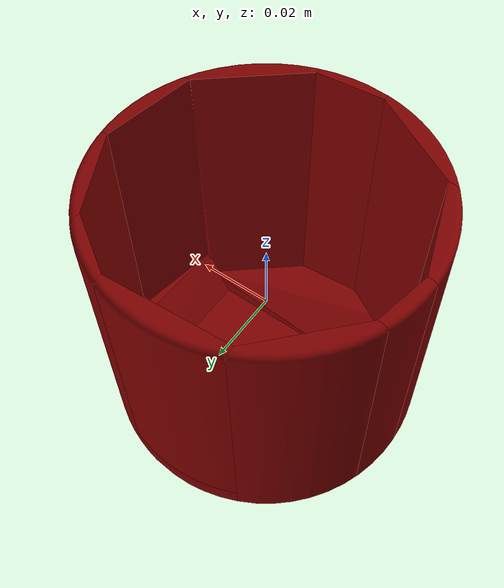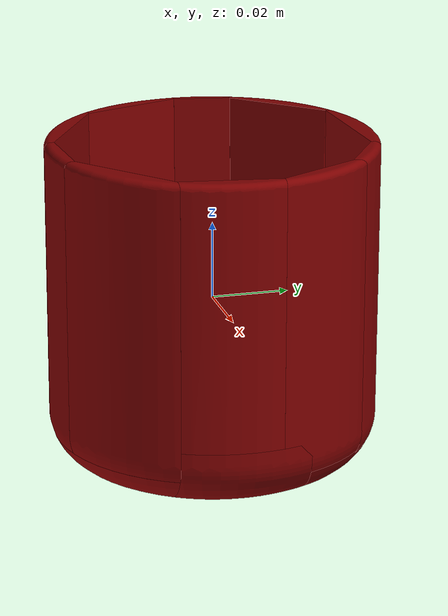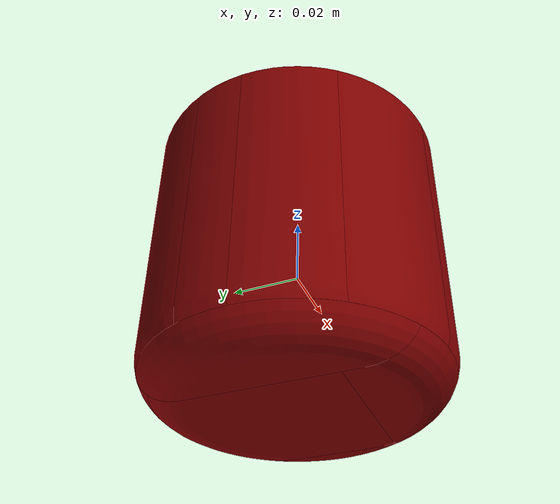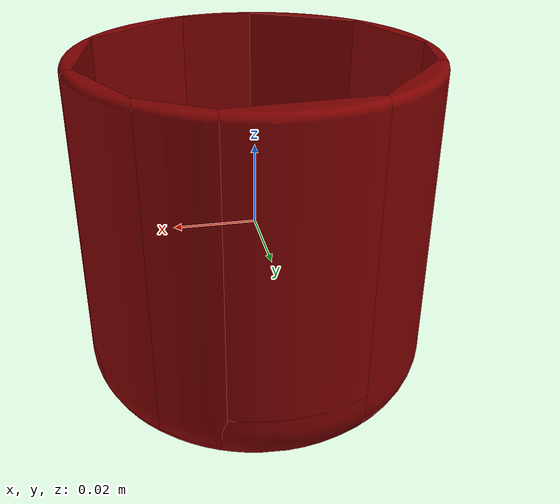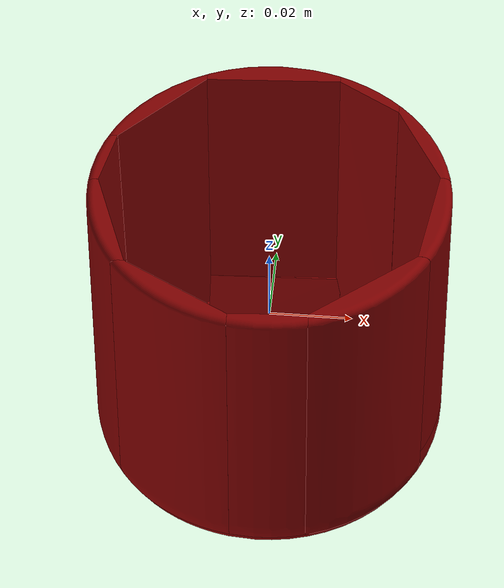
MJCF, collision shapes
<mujoco model="cup_1">
  <asset>
    <mesh file="visual/model_normalized_0.obj" name="model_normalized_0_vis" scale="0.08499999999999998 0.08499999999999998 0.08499999999999998" refquat="1.0 0.0 0.0 0.0"/>
    <mesh file="visual/model_normalized_1.obj" name="model_normalized_1_vis" scale="0.08499999999999998 0.08499999999999998 0.08499999999999998" refquat="1.0 0.0 0.0 0.0"/>
    <material name="Body3__0" specular="0.5" shininess="0.15999998099999999" rgba="1.000000 1.000000 1.000000 1.0"/>
    <material name="Paint_-_Enamel_Glossy_Red" specular="0.5" shininess="0.001788855" rgba="0.768627 0.207843 0.152941 1.0"/>
    <mesh file="collision/collision_mesh_collision_0.obj" name="cup_collision_mesh_0" scale="0.08499999999999998 0.08499999999999998 0.08499999999999998" refquat="1.0 0.0 0.0 0.0"/>
    <mesh file="collision/collision_mesh_collision_1.obj" name="cup_collision_mesh_1" scale="0.08499999999999998 0.08499999999999998 0.08499999999999998" refquat="1.0 0.0 0.0 0.0"/>
    <mesh file="collision/collision_mesh_collision_2.obj" name="cup_collision_mesh_2" scale="0.08499999999999998 0.08499999999999998 0.08499999999999998" refquat="1.0 0.0 0.0 0.0"/>
    <mesh file="collision/collision_mesh_collision_3.obj" name="cup_collision_mesh_3" scale="0.08499999999999998 0.08499999999999998 0.08499999999999998" refquat="1.0 0.0 0.0 0.0"/>
    <mesh file="collision/collision_mesh_collision_4.obj" name="cup_collision_mesh_4" scale="0.08499999999999998 0.08499999999999998 0.08499999999999998" refquat="1.0 0.0 0.0 0.0"/>
    <mesh file="collision/collision_mesh_collision_5.obj" name="cup_collision_mesh_5" scale="0.08499999999999998 0.08499999999999998 0.08499999999999998" refquat="1.0 0.0 0.0 0.0"/>
    <mesh file="collision/collision_mesh_collision_6.obj" name="cup_collision_mesh_6" scale="0.08499999999999998 0.08499999999999998 0.08499999999999998" refquat="1.0 0.0 0.0 0.0"/>
    <mesh file="collision/collision_mesh_collision_7.obj" name="cup_collision_mesh_7" scale="0.08499999999999998 0.08499999999999998 0.08499999999999998" refquat="1.0 0.0 0.0 0.0"/>
    <mesh file="collision/collision_mesh_collision_8.obj" name="cup_collision_mesh_8" scale="0.08499999999999998 0.08499999999999998 0.08499999999999998" refquat="1.0 0.0 0.0 0.0"/>
    <mesh file="collision/collision_mesh_collision_9.obj" name="cup_collision_mesh_9" scale="0.08499999999999998 0.08499999999999998 0.08499999999999998" refquat="1.0 0.0 0.0 0.0"/>
    <mesh file="collision/collision_mesh_collision_10.obj" name="cup_collision_mesh_10" scale="0.08499999999999998 0.08499999999999998 0.08499999999999998" refquat="1.0 0.0 0.0 0.0"/>
    <mesh file="collision/collision_mesh_collision_11.obj" name="cup_collision_mesh_11" scale="0.08499999999999998 0.08499999999999998 0.08499999999999998" refquat="1.0 0.0 0.0 0.0"/>
    <mesh file="collision/collision_mesh_collision_12.obj" name="cup_collision_mesh_12" scale="0.08499999999999998 0.08499999999999998 0.08499999999999998" refquat="1.0 0.0 0.0 0.0"/>
    <mesh file="collision/collision_mesh_collision_13.obj" name="cup_collision_mesh_13" scale="0.08499999999999998 0.08499999999999998 0.08499999999999998" refquat="1.0 0.0 0.0 0.0"/>
    <mesh file="collision/collision_mesh_collision_14.obj" name="cup_collision_mesh_14" scale="0.08499999999999998 0.08499999999999998 0.08499999999999998" refquat="1.0 0.0 0.0 0.0"/>
    <mesh file="collision/collision_mesh_collision_15.obj" name="cup_collision_mesh_15" scale="0.08499999999999998 0.08499999999999998 0.08499999999999998" refquat="1.0 0.0 0.0 0.0"/>
  </asset>
  <default>
    <default class="region">
      <geom group="1" conaffinity="0" contype="0" rgba="0 1 0 0"/>
    </default>
    <default class="collision">
      <geom group="3" rgba="0.5 0 0 0.5" density="1000.0"/>
    </default>
  </default>
  <worldbody>
    <body>
      <body name="object">
        <geom solimp="0.998 0.998 0.001" solref="0.001 1" density="100" friction="0.95 0.3 0.1" type="mesh" mesh="model_normalized_0_vis" conaffinity="0" contype="0" group="1" material="Body3__0"/>
        <geom solimp="0.998 0.998 0.001" solref="0.001 1" density="100" friction="0.95 0.3 0.1" type="mesh" mesh="model_normalized_1_vis" conaffinity="0" contype="0" group="1" material="Paint_-_Enamel_Glossy_Red"/>
        <geom class="region" name="reg_bbox" type="box" pos="1.0752500000002494e-07 2.749749999991779e-07 0.0" size="0.04249989247499999 0.04249972502499999 0.04249999999999999"/>
        <geom mesh="cup_collision_mesh_0" type="mesh" class="collision"/>
        <geom mesh="cup_collision_mesh_1" type="mesh" class="collision"/>
        <geom mesh="cup_collision_mesh_2" type="mesh" class="collision"/>
        <geom mesh="cup_collision_mesh_3" type="mesh" class="collision"/>
        <geom mesh="cup_collision_mesh_4" type="mesh" class="collision"/>
        <geom mesh="cup_collision_mesh_5" type="mesh" class="collision"/>
        <geom mesh="cup_collision_mesh_6" type="mesh" class="collision"/>
        <geom mesh="cup_collision_mesh_7" type="mesh" class="collision"/>
        <geom mesh="cup_collision_mesh_8" type="mesh" class="collision"/>
        <geom mesh="cup_collision_mesh_9" type="mesh" class="collision"/>
        <geom mesh="cup_collision_mesh_10" type="mesh" class="collision"/>
        <geom mesh="cup_collision_mesh_11" type="mesh" class="collision"/>
        <geom mesh="cup_collision_mesh_12" type="mesh" class="collision"/>
        <geom mesh="cup_collision_mesh_13" type="mesh" class="collision"/>
        <geom mesh="cup_collision_mesh_14" type="mesh" class="collision"/>
        <geom mesh="cup_collision_mesh_15" type="mesh" class="collision"/>
        <geom rgba="0 0 0 0" size="0.04 0.02" pos="0 0 0.01" type="cylinder" name="liquid" class="region"/>
        <geom rgba="0 0 0 0 " size="0.038 0.036" pos="0 0 0.003" type="cylinder" name="reg_int" class="region"/>
      </body>
    </body>
  </worldbody>
</mujoco>
